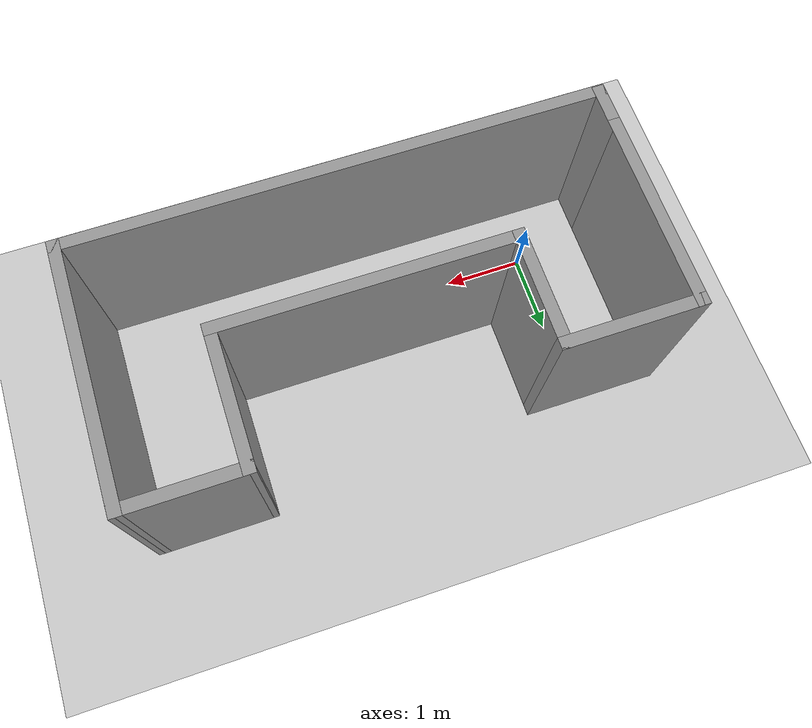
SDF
<sdf version="1.6">
 <world name="default">
  <light name="sun" type="directional">
   <pose>0 0 10 0 -0 0</pose>
   <diffuse>0.8 0.8 0.8 1</diffuse>
   <specular>0.2 0.2 0.2 1</specular>
   <attenuation>
    <range>1000</range>
    <constant>0.9</constant>
    <linear>0.01</linear>
    <quadratic>0.001</quadratic>
   </attenuation>
   <direction>-0.5 0.1 -0.9</direction>
  </light>
  <model name="ground_plane">
   <static>1</static>
   <link name="link">
    <collision name="collision">
     <geometry><plane><normal>0 0 1</normal><size>100 100</size></plane></geometry>
     <surface>
      <contact><collide_bitmask>65535</collide_bitmask></contact>
      <friction><ode><mu>100</mu><mu2>50</mu2></ode></friction>
     </surface>
    </collision>
    <visual name="visual">
     <cast_shadows>0</cast_shadows>
     <geometry><plane><normal>0 0 1</normal><size>100 100</size></plane></geometry>
     <material>
      <script><uri>file://media/materials/scripts/gazebo.material</uri><name>Gazebo/Grey</name></script>
     </material>
    </visual>
   </link>
  </model>
  <gravity>0 0 -9.8</gravity>
  <magnetic_field>6e-06 2.3e-05 -4.2e-05</magnetic_field>
  <atmosphere type="adiabatic"/>
  <physics name="default_physics" default="0" type="ode">
   <max_step_size>0.001</max_step_size>
   <real_time_factor>1</real_time_factor>
   <real_time_update_rate>1000</real_time_update_rate>
  </physics>
  <scene><ambient>0.4 0.4 0.4 1</ambient><background>0.7 0.7 0.7 1</background><shadows>1</shadows></scene>
  <spherical_coordinates>
   <surface_model>EARTH_WGS84</surface_model>
   <latitude_deg>0</latitude_deg>
   <longitude_deg>0</longitude_deg>
   <elevation>0</elevation>
   <heading_deg>0</heading_deg>
  </spherical_coordinates>
  <model name="uphome">
   <pose>2.2805 0.716613 0 0 -0 0</pose>
   <link name="Wall_42">
    <collision name="Wall_42_Collision">
     <geometry><box><size>3.75 0.15 2.5</size></box></geometry>
     <pose>0 0 1.25 0 -0 0</pose>
    </collision>
    <visual name="Wall_42_Visual">
     <pose>0 0 1.25 0 -0 0</pose>
     <geometry><box><size>3.75 0.15 2.5</size></box></geometry>
     <material>
      <script><uri>file://media/materials/scripts/gazebo.material</uri><name>Gazebo/Grey</name></script>
      <ambient>1 1 1 1</ambient>
     </material>
     <meta><layer>0</layer></meta>
    </visual>
    <pose>0.099944 -0.052135 0 0 -0 0</pose>
   </link>
   <link name="Wall_44">
    <collision name="Wall_44_Collision">
     <geometry><box><size>1.5 0.15 2.5</size></box></geometry>
     <pose>0 0 1.25 0 -0 0</pose>
    </collision>
    <visual name="Wall_44_Visual">
     <pose>0 0 1.25 0 -0 0</pose>
     <geometry><box><size>1.5 0.15 2.5</size></box></geometry>
     <material>
      <script><uri>file://media/materials/scripts/gazebo.material</uri><name>Gazebo/Grey</name></script>
      <ambient>1 1 1 1</ambient>
     </material>
     <meta><layer>0</layer></meta>
    </visual>
    <pose>-1.70006 0.622865 0 0 -0 1.5708</pose>
   </link>
   <link name="Wall_45">
    <collision name="Wall_45_Collision">
     <geometry><box><size>1.75 0.15 2.5</size></box></geometry>
     <pose>0 0 1.25 0 -0 0</pose>
    </collision>
    <visual name="Wall_45_Visual">
     <pose>0 0 1.25 0 -0 0</pose>
     <geometry><box><size>1.75 0.15 2.5</size></box></geometry>
     <material>
      <script><uri>file://media/materials/scripts/gazebo.material</uri><name>Gazebo/Grey</name></script>
      <ambient>1 1 1 1</ambient>
     </material>
     <meta><layer>0</layer></meta>
    </visual>
    <pose>-2.50006 1.29787 0 0 -0 3.14159</pose>
   </link>
   <link name="Wall_46">
    <collision name="Wall_46_Collision">
     <geometry><box><size>2.5 0.15 2.5</size></box></geometry>
     <pose>0 0 1.25 0 -0 0</pose>
    </collision>
    <visual name="Wall_46_Visual">
     <pose>0 0 1.25 0 -0 0</pose>
     <geometry><box><size>2.5 0.15 2.5</size></box></geometry>
     <material>
      <script><uri>file://media/materials/scripts/gazebo.material</uri><name>Gazebo/Grey</name></script>
      <ambient>1 1 1 1</ambient>
     </material>
     <meta><layer>0</layer></meta>
    </visual>
    <pose>-3.30005 0.122865 0 0 0 -1.5708</pose>
   </link>
   <link name="Wall_47">
    <collision name="Wall_47_Collision">
     <geometry><box><size>0.636578 0.15 2.5</size></box></geometry>
     <pose>0 0 1.25 0 -0 0</pose>
    </collision>
    <visual name="Wall_47_Visual">
     <pose>0 0 1.25 0 -0 0</pose>
     <geometry><box><size>0.636578 0.15 2.5</size></box></geometry>
     <material>
      <script><uri>file://media/materials/scripts/gazebo.material</uri><name>Gazebo/Grey</name></script>
      <ambient>1 1 1 1</ambient>
     </material>
     <meta><layer>0</layer></meta>
    </visual>
    <pose>-3.30005 -1.29542 0 0 0 -1.5708</pose>
   </link>
   <link name="Wall_48">
    <collision name="Wall_48_Collision">
     <geometry><box><size>6.75 0.15 2.5</size></box></geometry>
     <pose>0 0 1.25 0 -0 0</pose>
    </collision>
    <visual name="Wall_48_Visual">
     <pose>0 0 1.25 0 -0 0</pose>
     <geometry><box><size>6.75 0.15 2.5</size></box></geometry>
     <material>
      <script><uri>file://media/materials/scripts/gazebo.material</uri><name>Gazebo/Grey</name></script>
      <ambient>1 1 1 1</ambient>
     </material>
     <meta><layer>0</layer></meta>
    </visual>
    <pose>-5.5e-05 -1.55005 0 0 -0 0</pose>
   </link>
   <link name="Wall_52">
    <collision name="Wall_52_Collision">
     <geometry><box><size>1.75 0.15 2.5</size></box></geometry>
     <pose>0 0 1.25 0 -0 0</pose>
    </collision>
    <visual name="Wall_52_Visual">
     <pose>0 0 1.25 0 -0 0</pose>
     <geometry><box><size>1.75 0.15 2.5</size></box></geometry>
     <material>
      <script><uri>file://media/materials/scripts/gazebo.material</uri><name>Gazebo/Grey</name></script>
      <ambient>1 1 1 1</ambient>
     </material>
     <meta><layer>0</layer></meta>
    </visual>
    <pose>1.89994 0.747865 0 0 0 -1.5708</pose>
   </link>
   <link name="Wall_55">
    <collision name="Wall_55_Collision">
     <geometry><box><size>3.25 0.15 2.5</size></box></geometry>
     <pose>0 0 1.25 0 -0 0</pose>
    </collision>
    <visual name="Wall_55_Visual">
     <pose>0 0 1.25 0 -0 0</pose>
     <geometry><box><size>3.25 0.15 2.5</size></box></geometry>
     <material>
      <script><uri>file://media/materials/scripts/gazebo.material</uri><name>Gazebo/Grey</name></script>
      <ambient>1 1 1 1</ambient>
     </material>
     <meta><layer>0</layer></meta>
    </visual>
    <pose>3.29995 -5.5e-05 0 0 -0 1.5708</pose>
   </link>
   <link name="Wall_59">
    <collision name="Wall_59_Collision">
     <geometry><box><size>1.55 0.15 2.5</size></box></geometry>
     <pose>0 0 1.25 0 -0 0</pose>
    </collision>
    <visual name="Wall_59_Visual">
     <pose>0 0 1.25 0 -0 0</pose>
     <geometry><box><size>1.55 0.15 2.5</size></box></geometry>
     <material>
      <script><uri>file://media/materials/scripts/gazebo.material</uri><name>Gazebo/Grey</name></script>
      <ambient>1 1 1 1</ambient>
     </material>
     <meta><layer>0</layer></meta>
    </visual>
    <pose>2.59994 1.5489 0 0 -0 0.001485</pose>
   </link>
   <static>1</static>
  </model>
  <model name="unit_box">
   <link name="link">
    <pose>0.46618 0.037657 -0.407224 0 -0 0.756143</pose>
    <inertial>
     <mass>1</mass>
     <inertia>
      <ixx>0.166667</ixx>
      <ixy>0</ixy>
      <ixz>0</ixz>
      <iyy>0.166667</iyy>
      <iyz>0</iyz>
      <izz>0.166667</izz>
     </inertia>
    </inertial>
    <visual name="visual">
     <geometry><box><size>0.15 0.15 0.5</size></box></geometry>
     <material>
      <script><name>Gazebo/Grey</name><uri>file://media/materials/scripts/gazebo.material</uri></script>
      <shader type="pixel"><normal_map>__default__</normal_map></shader>
      <ambient>0.3 0.3 0.3 1</ambient>
      <diffuse>0.7 0.7 0.7 1</diffuse>
      <specular>0.01 0.01 0.01 1</specular>
      <emissive>0 0 0 1</emissive>
     </material>
    </visual>
    <collision name="collision">
     <geometry><box><size>0.15 0.15 0.5</size></box></geometry>
     <surface>
      <friction>
       <ode><mu>1</mu><mu2>1</mu2><fdir1>0 0 0</fdir1><slip1>0</slip1><slip2>0</slip2></ode>
       <torsional>
        <coefficient>1</coefficient>
        <patch_radius>0</patch_radius>
        <surface_radius>0</surface_radius>
        <use_patch_radius>1</use_patch_radius>
        <ode><slip>0</slip></ode>
       </torsional>
      </friction>
      <bounce><restitution_coefficient>0</restitution_coefficient><threshold>1e+06</threshold></bounce>
      <contact>
       <collide_without_contact>0</collide_without_contact>
       <collide_without_contact_bitmask>1</collide_without_contact_bitmask>
       <collide_bitmask>1</collide_bitmask>
       <ode>
        <soft_cfm>0</soft_cfm>
        <soft_erp>0.2</soft_erp>
        <kp>1e+13</kp>
        <kd>1</kd>
        <max_vel>0.01</max_vel>
        <min_depth>0</min_depth>
       </ode>
       <bullet>
        <split_impulse>1</split_impulse>
        <split_impulse_penetration_threshold>-0.01</split_impulse_penetration_threshold>
        <soft_cfm>0</soft_cfm>
        <soft_erp>0.2</soft_erp>
        <kp>1e+13</kp>
        <kd>1</kd>
       </bullet>
      </contact>
     </surface>
    </collision>
   </link>
   <static>0</static>
   <pose>1.96248 -0.049607 0.5 0 -0 0</pose>
  </model>
 </world>
</sdf>
